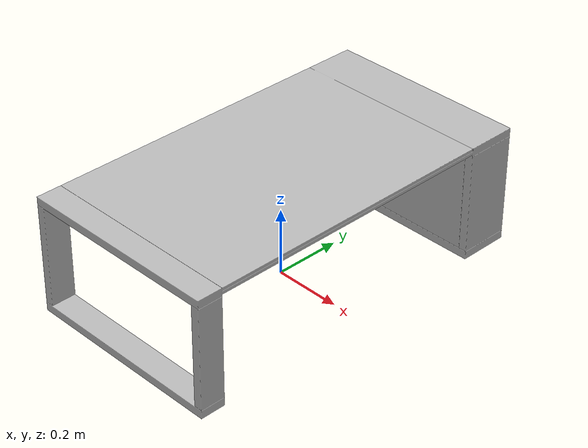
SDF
<?xml version='1.0'?>
<sdf version='1.4'>
  <model name='s__561'>
    <pose>0 0 0 0 0 0</pose>
    <static>true</static>
    <link name='link'>
      <collision name='collision'>
        <pose>0 0 0 0 0 0</pose>
        <geometry>
          <box>
            <size>0.6 1.1 2</size>
          </box>
        </geometry>
      </collision>
      <visual name='visual'>
        <pose>0 0 0 0 0 0</pose>
        <geometry>
          <mesh><uri>model://s__561/s__561.dae</uri></mesh>
        </geometry>
      </visual>
    </link>
  </model>
</sdf>
